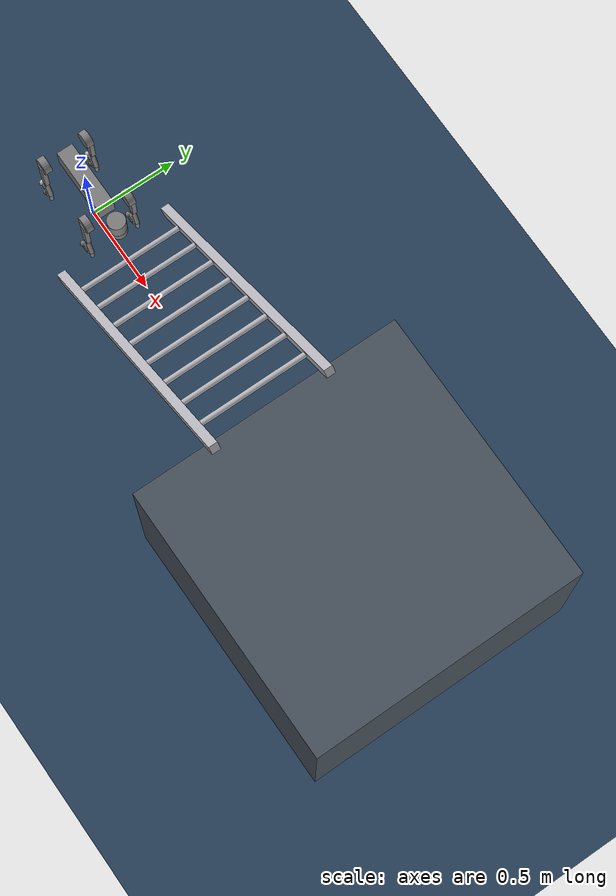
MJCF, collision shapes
<mujoco model="go2_ladder_scene">
  <include file="go2_leggedgym.xml"/>

  <statistic center="0.8 0 0.45" extent="3.4"/>

  <visual>
    <headlight diffuse="0.6 0.6 0.6" ambient="0.35 0.35 0.35" specular="0 0 0"/>
    <rgba haze="0.15 0.25 0.35 1"/>
    <global azimuth="-135" elevation="-18"/>
  </visual>

  <asset>
    <texture type="skybox" builtin="gradient" rgb1="0.3 0.5 0.7" rgb2="0.0 0.0 0.0" width="512" height="3072"/>
    <texture type="2d" name="groundplane" builtin="checker" mark="edge"
      rgb1="0.2 0.3 0.4" rgb2="0.1 0.2 0.3" markrgb="0.8 0.8 0.8"
      width="300" height="300"/>
    <material name="groundplane" texture="groundplane" texuniform="true" texrepeat="6 6" reflectance="0.2"/>
    <material name="ladder" rgba="0.72 0.72 0.75 1"/>
    <material name="platform" rgba="0.28 0.32 0.36 1"/>
    <material name="support" rgba="0.38 0.34 0.3 1"/>
  </asset>

  <worldbody>
    <light pos="0 0 3.0" dir="0 0 -1" directional="true"/>
    <geom name="floor" type="plane" size="0 0 0.05" material="groundplane" friction="1 1 0.01"/>

    <geom name="rung_1" type="cylinder" pos="0.364 0 0.115" quat="0.707107 -0.707107 0 0" size="0.015 0.325"
      material="ladder" friction="1 1 0.01"/>
    <geom name="rung_2" type="cylinder" pos="0.528 0 0.229" quat="0.707107 -0.707107 0 0" size="0.015 0.325"
      material="ladder" friction="1 1 0.01"/>
    <geom name="rung_3" type="cylinder" pos="0.692 0 0.344" quat="0.707107 -0.707107 0 0" size="0.015 0.325"
      material="ladder" friction="1 1 0.01"/>
    <geom name="rung_4" type="cylinder" pos="0.855 0 0.459" quat="0.707107 -0.707107 0 0" size="0.015 0.325"
      material="ladder" friction="1 1 0.01"/>
    <geom name="rung_5" type="cylinder" pos="1.019 0 0.574" quat="0.707107 -0.707107 0 0" size="0.015 0.325"
      material="ladder" friction="1 1 0.01"/>
    <geom name="rung_6" type="cylinder" pos="1.183 0 0.688" quat="0.707107 -0.707107 0 0" size="0.015 0.325"
      material="ladder" friction="1 1 0.01"/>
    <geom name="rung_7" type="cylinder" pos="1.347 0 0.803" quat="0.707107 -0.707107 0 0" size="0.015 0.325"
      material="ladder" friction="1 1 0.01"/>
    <geom name="rung_8" type="cylinder" pos="1.511 0 0.918" quat="0.707107 -0.707107 0 0" size="0.015 0.325"
      material="ladder" friction="1 1 0.01"/>

    <geom name="rail_left" type="box" pos="0.938 0.325 0.516"
      quat="0.887011 0 0.461749 0" size="0.025 0.025 0.9"
      material="ladder" friction="1 1 0.01"/>
    <geom name="rail_right" type="box" pos="0.938 -0.325 0.516"
      quat="0.887011 0 0.461749 0" size="0.025 0.025 0.9"
      material="ladder" friction="1 1 0.01"/>

    <geom name="top_platform" type="box" pos="2.361 0 0.459" size="0.75 0.75 0.459"
      material="platform" friction="1 1 0.01"/>
  </worldbody>
</mujoco>

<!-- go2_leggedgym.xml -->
<mujoco model="go2_leggedgym">
  <compiler angle="radian" meshdir="assets" autolimits="true" />

  <option cone="elliptic" impratio="100" />

  <default>
    <default class="go2">
      <geom friction="0.4" margin="0.001" condim="1"/>
      <joint axis="0 1 0" damping="0.1" armature="0.01" frictionloss="0.2"/>
      <motor ctrlrange="-23.7 23.7"/>
      <default class="abduction">
        <joint axis="1 0 0" range="-1.0472 1.0472"/>
      </default>
      <default class="hip">
        <default class="front_hip">
          <joint range="-1.5708 3.4907"/>
        </default>
        <default class="back_hip">
          <joint range="-0.5236 4.5379"/>
        </default>
      </default>
      <default class="knee">
        <joint range="-2.7227 -0.83776"/>
        <motor ctrlrange="-45.43 45.43"/>
      </default>
      <default class="visual">
        <geom type="mesh" contype="0" conaffinity="0" group="2"/>
      </default>
      <default class="collision">
        <geom group="3"/>
        <default class="foot">
          <geom size="0.022" pos="-0.002 0 -0.213" priority="1" condim="6"
            friction="0.4 0.02 0.01"/>
        </default>
      </default>
    </default>
  </default>

  <asset>
    <material name="metal" rgba=".9 .95 .95 1" />
    <material name="black" rgba="0 0 0 1" />
    <material name="white" rgba="1 1 1 1" />
    <material name="gray" rgba="0.671705 0.692426 0.774270 1" />

    <mesh file="base_0.obj" />
    <mesh file="base_1.obj" />
    <mesh file="base_2.obj" />
    <mesh file="base_3.obj" />
    <mesh file="base_4.obj" />
    <mesh file="hip_0.obj" />
    <mesh file="hip_1.obj" />
    <mesh file="thigh_0.obj" />
    <mesh file="thigh_1.obj" />
    <mesh file="thigh_mirror_0.obj" />
    <mesh file="thigh_mirror_1.obj" />
    <mesh file="calf_0.obj" />
    <mesh file="calf_1.obj" />
    <mesh file="calf_mirror_0.obj" />
    <mesh file="calf_mirror_1.obj" />
    <mesh file="foot.obj" />
  </asset>

  <worldbody>
    <body name="base" pos="0 0 0.445" childclass="go2">
      <inertial pos="0.021112 0 -0.005366" quat="-0.000543471 0.713435 -0.00173769 0.700719"
        mass="6.921"
        diaginertia="0.107027 0.0980771 0.0244531" />
      <freejoint />
      <geom mesh="base_0" material="black" class="visual" />
      <geom mesh="base_1" material="black" class="visual" />
      <geom mesh="base_2" material="black" class="visual" />
      <geom mesh="base_3" material="white" class="visual" />
      <geom mesh="base_4" material="gray" class="visual" />
      <geom size="0.1881 0.04675 0.057" type="box" class="collision" />
      <site name="imu" pos="-0.02557 0 0.04232" />
      <body name="Head_upper" pos="0.285 0 0.01">
        <geom size="0.05 0.045" type="cylinder" class="collision" />
        <body name="Head_lower" pos="0.008 0 -0.07">
          <geom size="0.047" class="collision" />
        </body>
      </body>
      <body name="imu_link" pos="-0.02557 0 0.04232" />
      <body name="FL_hip" pos="0.1934 0.0465 0">
        <inertial pos="-0.0054 0.00194 -0.000105" quat="0.497014 0.499245 0.505462 0.498237"
          mass="0.678"
          diaginertia="0.00088403 0.000596003 0.000479967" />
        <joint name="FL_hip_joint" class="abduction" />
        <geom mesh="hip_0" material="metal" class="visual" />
        <geom mesh="hip_1" material="gray" class="visual" />
        <geom size="0.046 0.02" pos="0 0.08 0" quat="1 1 0 0" type="cylinder" class="collision" />
        <body name="FL_thigh" pos="0 0.0955 0">
          <inertial pos="-0.00374 -0.0223 -0.0327" quat="0.829533 0.0847635 -0.0200632 0.551623"
            mass="1.152"
            diaginertia="0.00594973 0.00584149 0.000878787" />
          <joint name="FL_thigh_joint" class="front_hip" />
          <geom mesh="thigh_0" material="metal" class="visual" />
          <geom mesh="thigh_1" material="gray" class="visual" />
          <geom size="0.1065 0.01225 0.017" pos="0 0 -0.1065" quat="0.707107 0 0.707107 0"
            type="box" class="collision" />
          <body name="FL_calf" pos="0 0 -0.213">
            <inertial pos="0.00629595 -0.000622121 -0.141417"
              quat="0.710672 0.00154099 -0.00450087 0.703508"
              mass="0.241352" diaginertia="0.0014901 0.00146356 5.31397e-05" />
            <joint name="FL_calf_joint" class="knee" />
            <geom mesh="calf_0" material="gray" class="visual" />
            <geom mesh="calf_1" material="black" class="visual" />
            <geom size="0.012 0.06" pos="0.008 0 -0.06" quat="0.994493 0 -0.104807 0"
              type="cylinder" class="collision" />
            <geom size="0.011 0.0325" pos="0.02 0 -0.148" quat="0.999688 0 0.0249974 0"
              type="cylinder" class="collision" />
            <geom size="0.01 0.015" pos="-0.0139617 0 -0.178451" quat="0.997189 0 0.0749297 0"
              type="capsule" class="collision" />
            <geom size="0.01 0.015" pos="-0.0303101 0 -0.206321" quat="0.892698 0 0.450656 0"
              type="capsule" class="collision" />
            <geom size="0.01 0.015" pos="-0.0615739 0 -0.21448" quat="0.652437 0 0.757843 0"
              type="capsule" class="collision" />
            <geom size="0.015" pos="-0.0764072 0 -0.21225" class="collision" />
            <geom size="0.01 0.015" pos="-0.0213438 0 -0.146994" quat="0.950019 0 -0.312192 0"
              type="capsule" class="collision" />
            <geom size="0.015" pos="-0.0302414 0 -0.134918" class="collision" />
            <geom size="0.01 0.015" pos="-0.0139617 0 -0.178451" quat="0.997189 0 0.0749297 0"
              type="capsule" rgba="0.8 0.8 0.8 1" group="2" contype="0" conaffinity="0" />
            <geom size="0.01 0.015" pos="-0.0303101 0 -0.206321" quat="0.892698 0 0.450656 0"
              type="capsule" rgba="0.8 0.8 0.8 1" group="2" contype="0" conaffinity="0" />
            <geom size="0.01 0.015" pos="-0.0615739 0 -0.21448" quat="0.652437 0 0.757843 0"
              type="capsule" rgba="0.8 0.8 0.8 1" group="2" contype="0" conaffinity="0" />
            <geom size="0.015" pos="-0.0764072 0 -0.21225" rgba="0.8 0.8 0.8 1" group="2" contype="0" conaffinity="0" />
            <geom size="0.01 0.015" pos="-0.0213438 0 -0.146994" quat="0.950019 0 -0.312192 0"
              type="capsule" rgba="0.8 0.8 0.8 1" group="2" contype="0" conaffinity="0" />
            <geom size="0.015" pos="-0.0302414 0 -0.134918" rgba="0.8 0.8 0.8 1" group="2" contype="0" conaffinity="0" />
            <geom name="FL" size="0.015" pos="-0.0764072 0 -0.21225" priority="1" condim="6"
              friction="0.4 0.02 0.01" class="collision" />
            <body name="FL_effector" pos="-0.0303101 0 -0.206321">
              <body name="FL_foot" pos="-0.0460971 0 -0.005929" />
            </body>
          </body>
        </body>
      </body>
      <body name="FR_hip" pos="0.1934 -0.0465 0">
        <inertial pos="-0.0054 -0.00194 -0.000105" quat="0.498237 0.505462 0.499245 0.497014"
          mass="0.678"
          diaginertia="0.00088403 0.000596003 0.000479967" />
        <joint name="FR_hip_joint" class="abduction" />
        <geom mesh="hip_0" material="metal" class="visual" quat="4.63268e-05 1 0 0" />
        <geom mesh="hip_1" material="gray" class="visual" quat="4.63268e-05 1 0 0" />
        <geom size="0.046 0.02" pos="0 -0.08 0" quat="0.707107 0.707107 0 0" type="cylinder"
          class="collision" />
        <body name="FR_thigh" pos="0 -0.0955 0">
          <inertial pos="-0.00374 0.0223 -0.0327" quat="0.551623 -0.0200632 0.0847635 0.829533"
            mass="1.152"
            diaginertia="0.00594973 0.00584149 0.000878787" />
          <joint name="FR_thigh_joint" class="front_hip" />
          <geom mesh="thigh_mirror_0" material="metal" class="visual" />
          <geom mesh="thigh_mirror_1" material="gray" class="visual" />
          <geom size="0.1065 0.01225 0.017" pos="0 0 -0.1065" quat="0.707107 0 0.707107 0"
            type="box" class="collision" />
          <body name="FR_calf" pos="0 0 -0.213">
            <inertial pos="0.00629595 0.000622121 -0.141417"
              quat="0.703508 -0.00450087 0.00154099 0.710672"
              mass="0.241352" diaginertia="0.0014901 0.00146356 5.31397e-05" />
            <joint name="FR_calf_joint" class="knee" />
            <geom mesh="calf_mirror_0" material="gray" class="visual" />
            <geom mesh="calf_mirror_1" material="black" class="visual" />
            <geom size="0.013 0.06" pos="0.01 0 -0.06" quat="0.995004 0 -0.0998334 0"
              type="cylinder" class="collision" />
            <geom size="0.011 0.0325" pos="0.02 0 -0.148" quat="0.999688 0 0.0249974 0"
              type="cylinder" class="collision" />
            <geom size="0.01 0.015" pos="-0.0139617 0 -0.178451" quat="0.997189 0 0.0749297 0"
              type="capsule" class="collision" />
            <geom size="0.01 0.015" pos="-0.0303101 0 -0.206321" quat="0.892698 0 0.450656 0"
              type="capsule" class="collision" />
            <geom size="0.01 0.015" pos="-0.0615739 0 -0.21448" quat="0.652437 0 0.757843 0"
              type="capsule" class="collision" />
            <geom size="0.015" pos="-0.0764072 0 -0.21225" class="collision" />
            <geom size="0.01 0.015" pos="-0.0213438 0 -0.146994" quat="0.950019 0 -0.312192 0"
              type="capsule" class="collision" />
            <geom size="0.015" pos="-0.0302414 0 -0.134918" class="collision" />
            <geom size="0.01 0.015" pos="-0.0139617 0 -0.178451" quat="0.997189 0 0.0749297 0"
              type="capsule" rgba="0.8 0.8 0.8 1" group="2" contype="0" conaffinity="0" />
            <geom size="0.01 0.015" pos="-0.0303101 0 -0.206321" quat="0.892698 0 0.450656 0"
              type="capsule" rgba="0.8 0.8 0.8 1" group="2" contype="0" conaffinity="0" />
            <geom size="0.01 0.015" pos="-0.0615739 0 -0.21448" quat="0.652437 0 0.757843 0"
              type="capsule" rgba="0.8 0.8 0.8 1" group="2" contype="0" conaffinity="0" />
            <geom size="0.015" pos="-0.0764072 0 -0.21225" rgba="0.8 0.8 0.8 1" group="2" contype="0" conaffinity="0" />
            <geom size="0.01 0.015" pos="-0.0213438 0 -0.146994" quat="0.950019 0 -0.312192 0"
              type="capsule" rgba="0.8 0.8 0.8 1" group="2" contype="0" conaffinity="0" />
            <geom size="0.015" pos="-0.0302414 0 -0.134918" rgba="0.8 0.8 0.8 1" group="2" contype="0" conaffinity="0" />
            <geom name="FR" size="0.015" pos="-0.0764072 0 -0.21225" priority="1" condim="6"
              friction="0.4 0.02 0.01" class="collision" />
            <body name="FR_effector" pos="-0.0303101 0 -0.206321">
              <body name="FR_foot" pos="-0.0460971 0 -0.005929" />
            </body>
          </body>
        </body>
      </body>
      <body name="RL_hip" pos="-0.1934 0.0465 0">
        <inertial pos="0.0054 0.00194 -0.000105" quat="0.505462 0.498237 0.497014 0.499245"
          mass="0.678"
          diaginertia="0.00088403 0.000596003 0.000479967" />
        <joint name="RL_hip_joint" class="abduction" />
        <geom mesh="hip_0" material="metal" class="visual" quat="4.63268e-05 0 1 0" />
        <geom mesh="hip_1" material="gray" class="visual" quat="4.63268e-05 0 1 0" />
        <geom size="0.046 0.02" pos="0 0.08 0" quat="0.707107 0.707107 0 0" type="cylinder"
          class="collision" />
        <body name="RL_thigh" pos="0 0.0955 0">
          <inertial pos="-0.00374 -0.0223 -0.0327" quat="0.829533 0.0847635 -0.0200632 0.551623"
            mass="1.152"
            diaginertia="0.00594973 0.00584149 0.000878787" />
          <joint name="RL_thigh_joint" class="back_hip" />
          <geom mesh="thigh_0" material="metal" class="visual" />
          <geom mesh="thigh_1" material="gray" class="visual" />
          <geom size="0.1065 0.01225 0.017" pos="0 0 -0.1065" quat="0.707107 0 0.707107 0"
            type="box" class="collision" />
          <body name="RL_calf" pos="0 0 -0.213">
            <inertial pos="0.00629595 -0.000622121 -0.141417"
              quat="0.710672 0.00154099 -0.00450087 0.703508"
              mass="0.241352" diaginertia="0.0014901 0.00146356 5.31397e-05" />
            <joint name="RL_calf_joint" class="knee" />
            <geom mesh="calf_0" material="gray" class="visual" />
            <geom mesh="calf_1" material="black" class="visual" />
            <geom size="0.013 0.06" pos="0.01 0 -0.06" quat="0.995004 0 -0.0998334 0"
              type="cylinder" class="collision" />
            <geom size="0.011 0.0325" pos="0.02 0 -0.148" quat="0.999688 0 0.0249974 0"
              type="cylinder" class="collision" />
            <geom size="0.01 0.015" pos="-0.0139617 0 -0.178451" quat="0.997189 0 0.0749297 0"
              type="capsule" class="collision" />
            <geom size="0.01 0.015" pos="-0.0303101 0 -0.206321" quat="0.892698 0 0.450656 0"
              type="capsule" class="collision" />
            <geom size="0.015" pos="-0.0423791 0 -0.215228" class="collision" />
            <geom size="0.01 0.015" pos="-0.0213438 0 -0.146994" quat="0.950019 0 -0.312192 0"
              type="capsule" class="collision" />
            <geom size="0.01 0.015" pos="-0.0488 0 -0.12996" quat="0.758362 0 -0.651834 0"
              type="capsule" class="collision" />
            <geom size="0.01 0.015" pos="-0.0139617 0 -0.178451" quat="0.997189 0 0.0749297 0"
              type="capsule" rgba="0.8 0.8 0.8 1" group="2" contype="0" conaffinity="0" />
            <geom size="0.01 0.015" pos="-0.0303101 0 -0.206321" quat="0.892698 0 0.450656 0"
              type="capsule" rgba="0.8 0.8 0.8 1" group="2" contype="0" conaffinity="0" />
            <geom size="0.015" pos="-0.0423791 0 -0.215228" rgba="0.8 0.8 0.8 1" group="2" contype="0" conaffinity="0" />
            <geom size="0.01 0.015" pos="-0.0213438 0 -0.146994" quat="0.950019 0 -0.312192 0"
              type="capsule" rgba="0.8 0.8 0.8 1" group="2" contype="0" conaffinity="0" />
            <geom size="0.01 0.015" pos="-0.0488 0 -0.12996" quat="0.758362 0 -0.651834 0"
              type="capsule" rgba="0.8 0.8 0.8 1" group="2" contype="0" conaffinity="0" />
            <geom size="0.015" pos="-0.0636297 0 -0.127707" rgba="0.8 0.8 0.8 1" group="2" contype="0" conaffinity="0" />
            <geom name="RL" size="0.015" pos="-0.0636297 0 -0.127707" priority="1" condim="6"
              friction="0.4 0.02 0.01" class="collision" />
            <body name="RL_effector" pos="-0.0303101 0 -0.206321">
              <body name="RL_foot" pos="-0.0333196 0 0.078614" />
            </body>
          </body>
        </body>
      </body>
      <body name="RR_hip" pos="-0.1934 -0.0465 0">
        <inertial pos="0.0054 -0.00194 -0.000105" quat="0.499245 0.497014 0.498237 0.505462"
          mass="0.678"
          diaginertia="0.00088403 0.000596003 0.000479967" />
        <joint name="RR_hip_joint" class="abduction" />
        <geom mesh="hip_0" material="metal" class="visual"
          quat="2.14617e-09 4.63268e-05 4.63268e-05 -1" />
        <geom mesh="hip_1" material="gray" class="visual"
          quat="2.14617e-09 4.63268e-05 4.63268e-05 -1" />
        <geom size="0.046 0.02" pos="0 -0.08 0" quat="0.707107 0.707107 0 0" type="cylinder"
          class="collision" />
        <body name="RR_thigh" pos="0 -0.0955 0">
          <inertial pos="-0.00374 0.0223 -0.0327" quat="0.551623 -0.0200632 0.0847635 0.829533"
            mass="1.152"
            diaginertia="0.00594973 0.00584149 0.000878787" />
          <joint name="RR_thigh_joint" class="back_hip" />
          <geom mesh="thigh_mirror_0" material="metal" class="visual" />
          <geom mesh="thigh_mirror_1" material="gray" class="visual" />
          <geom size="0.1065 0.01225 0.017" pos="0 0 -0.1065" quat="0.707107 0 0.707107 0"
            type="box" class="collision" />
          <body name="RR_calf" pos="0 0 -0.213">
            <inertial pos="0.00629595 0.000622121 -0.141417"
              quat="0.703508 -0.00450087 0.00154099 0.710672"
              mass="0.241352" diaginertia="0.0014901 0.00146356 5.31397e-05" />
            <joint name="RR_calf_joint" class="knee" />
            <geom mesh="calf_mirror_0" material="gray" class="visual" />
            <geom mesh="calf_mirror_1" material="black" class="visual" />
            <geom size="0.013 0.06" pos="0.01 0 -0.06" quat="0.995004 0 -0.0998334 0"
              type="cylinder" class="collision" />
            <geom size="0.011 0.0325" pos="0.02 0 -0.148" quat="0.999688 0 0.0249974 0"
              type="cylinder" class="collision" />
            <geom size="0.01 0.015" pos="-0.0139617 0 -0.178451" quat="0.997189 0 0.0749297 0"
              type="capsule" class="collision" />
            <geom size="0.01 0.015" pos="-0.0303101 0 -0.206321" quat="0.892698 0 0.450656 0"
              type="capsule" class="collision" />
            <geom size="0.015" pos="-0.0423791 0 -0.215228" class="collision" />
            <geom size="0.01 0.015" pos="-0.0213438 0 -0.146994" quat="0.950019 0 -0.312192 0"
              type="capsule" class="collision" />
            <geom size="0.01 0.015" pos="-0.0488 0 -0.12996" quat="0.758362 0 -0.651834 0"
              type="capsule" class="collision" />
            <geom size="0.01 0.015" pos="-0.0139617 0 -0.178451" quat="0.997189 0 0.0749297 0"
              type="capsule" rgba="0.8 0.8 0.8 1" group="2" contype="0" conaffinity="0" />
            <geom size="0.01 0.015" pos="-0.0303101 0 -0.206321" quat="0.892698 0 0.450656 0"
              type="capsule" rgba="0.8 0.8 0.8 1" group="2" contype="0" conaffinity="0" />
            <geom size="0.015" pos="-0.0423791 0 -0.215228" rgba="0.8 0.8 0.8 1" group="2" contype="0" conaffinity="0" />
            <geom size="0.01 0.015" pos="-0.0213438 0 -0.146994" quat="0.950019 0 -0.312192 0"
              type="capsule" rgba="0.8 0.8 0.8 1" group="2" contype="0" conaffinity="0" />
            <geom size="0.01 0.015" pos="-0.0488 0 -0.12996" quat="0.758362 0 -0.651834 0"
              type="capsule" rgba="0.8 0.8 0.8 1" group="2" contype="0" conaffinity="0" />
            <geom size="0.015" pos="-0.0636297 0 -0.127707" rgba="0.8 0.8 0.8 1" group="2" contype="0" conaffinity="0" />
            <geom name="RR" size="0.015" pos="-0.0636297 0 -0.127707" priority="1" condim="6"
              friction="0.4 0.02 0.01" class="collision" />
            <body name="RR_effector" pos="-0.0303101 0 -0.206321">
              <body name="RR_foot" pos="-0.0333196 0 0.078614" />
            </body>
          </body>
        </body>
      </body>
    </body>
  </worldbody>

  <actuator>
    <motor class="abduction" name="FR_hip" joint="FR_hip_joint" />
    <motor class="hip" name="FR_thigh" joint="FR_thigh_joint" />
    <motor class="knee" name="FR_calf" joint="FR_calf_joint" />
    <motor class="abduction" name="FL_hip" joint="FL_hip_joint" />
    <motor class="hip" name="FL_thigh" joint="FL_thigh_joint" />
    <motor class="knee" name="FL_calf" joint="FL_calf_joint" />
    <motor class="abduction" name="RR_hip" joint="RR_hip_joint" />
    <motor class="hip" name="RR_thigh" joint="RR_thigh_joint" />
    <motor class="knee" name="RR_calf" joint="RR_calf_joint" />
    <motor class="abduction" name="RL_hip" joint="RL_hip_joint" />
    <motor class="hip" name="RL_thigh" joint="RL_thigh_joint" />
    <motor class="knee" name="RL_calf" joint="RL_calf_joint" />
  </actuator>

  <sensor>
    <jointpos name="FR_hip_pos" joint="FR_hip_joint" />
    <jointpos name="FR_thigh_pos" joint="FR_thigh_joint" />
    <jointpos name="FR_calf_pos" joint="FR_calf_joint" />
    <jointpos name="FL_hip_pos" joint="FL_hip_joint" />
    <jointpos name="FL_thigh_pos" joint="FL_thigh_joint" />
    <jointpos name="FL_calf_pos" joint="FL_calf_joint" />
    <jointpos name="RR_hip_pos" joint="RR_hip_joint" />
    <jointpos name="RR_thigh_pos" joint="RR_thigh_joint" />
    <jointpos name="RR_calf_pos" joint="RR_calf_joint" />
    <jointpos name="RL_hip_pos" joint="RL_hip_joint" />
    <jointpos name="RL_thigh_pos" joint="RL_thigh_joint" />
    <jointpos name="RL_calf_pos" joint="RL_calf_joint" />

    <jointvel name="FR_hip_vel" joint="FR_hip_joint" />
    <jointvel name="FR_thigh_vel" joint="FR_thigh_joint" />
    <jointvel name="FR_calf_vel" joint="FR_calf_joint" />
    <jointvel name="FL_hip_vel" joint="FL_hip_joint" />
    <jointvel name="FL_thigh_vel" joint="FL_thigh_joint" />
    <jointvel name="FL_calf_vel" joint="FL_calf_joint" />
    <jointvel name="RR_hip_vel" joint="RR_hip_joint" />
    <jointvel name="RR_thigh_vel" joint="RR_thigh_joint" />
    <jointvel name="RR_calf_vel" joint="RR_calf_joint" />
    <jointvel name="RL_hip_vel" joint="RL_hip_joint" />
    <jointvel name="RL_thigh_vel" joint="RL_thigh_joint" />
    <jointvel name="RL_calf_vel" joint="RL_calf_joint" />

    <jointactuatorfrc name="FR_hip_torque" joint="FR_hip_joint" noise="0.01" />
    <jointactuatorfrc name="FR_thigh_torque" joint="FR_thigh_joint" noise="0.01" />
    <jointactuatorfrc name="FR_calf_torque" joint="FR_calf_joint" noise="0.01" />
    <jointactuatorfrc name="FL_hip_torque" joint="FL_hip_joint" noise="0.01" />
    <jointactuatorfrc name="FL_thigh_torque" joint="FL_thigh_joint" noise="0.01" />
    <jointactuatorfrc name="FL_calf_torque" joint="FL_calf_joint" noise="0.01" />
    <jointactuatorfrc name="RR_hip_torque" joint="RR_hip_joint" noise="0.01" />
    <jointactuatorfrc name="RR_thigh_torque" joint="RR_thigh_joint" noise="0.01" />
    <jointactuatorfrc name="RR_calf_torque" joint="RR_calf_joint" noise="0.01" />
    <jointactuatorfrc name="RL_hip_torque" joint="RL_hip_joint" noise="0.01" />
    <jointactuatorfrc name="RL_thigh_torque" joint="RL_thigh_joint" noise="0.01" />
    <jointactuatorfrc name="RL_calf_torque" joint="RL_calf_joint" noise="0.01" />

    <framequat name="imu_quat" objtype="site" objname="imu" />
    <gyro name="imu_gyro" site="imu" />
    <accelerometer name="imu_acc" site="imu" />

    <framepos name="frame_pos" objtype="site" objname="imu" />
    <framelinvel name="frame_vel" objtype="site" objname="imu" />
  </sensor>

  <keyframe>
    <key name="home" qpos="0 0 0.27 1 0 0 0 0 0.9 -1.8 0 0.9 -1.8 0 0.9 -1.8 0 0.9 -1.8"
      ctrl="0 0.9 -1.8 0 0.9 -1.8 0 0.9 -1.8 0 0.9 -1.8" />
  </keyframe>
</mujoco>
